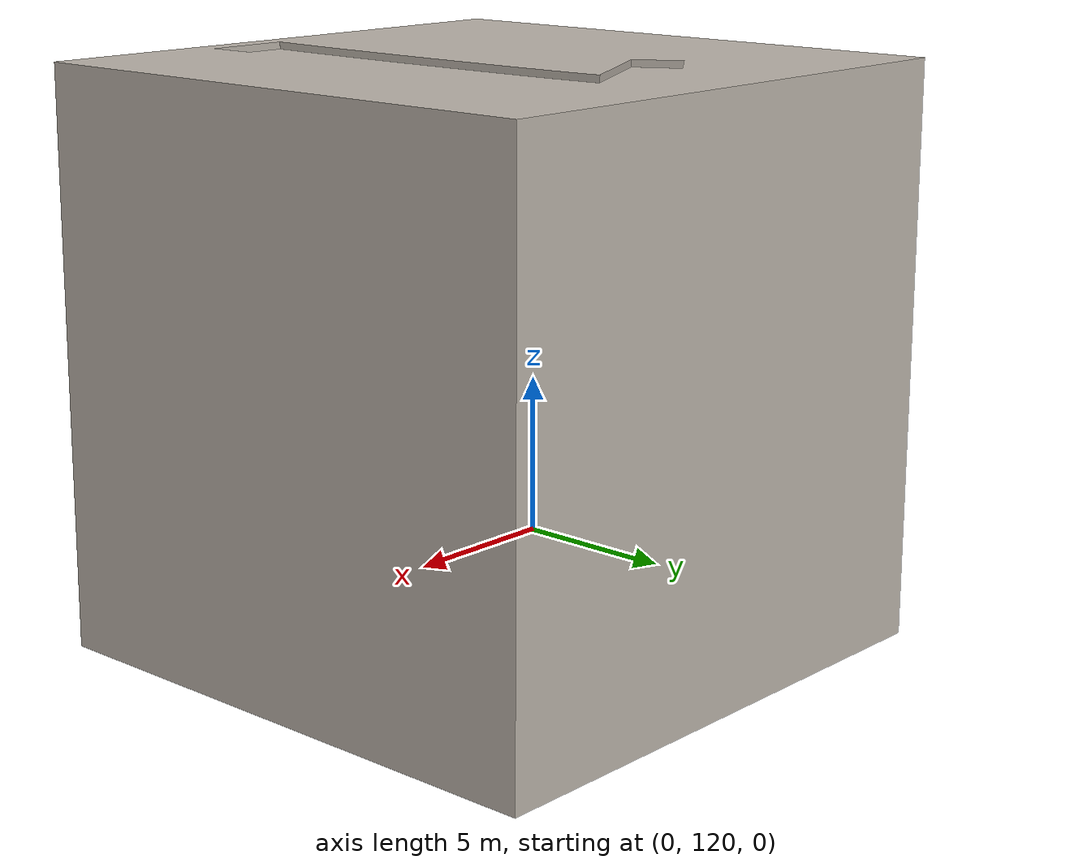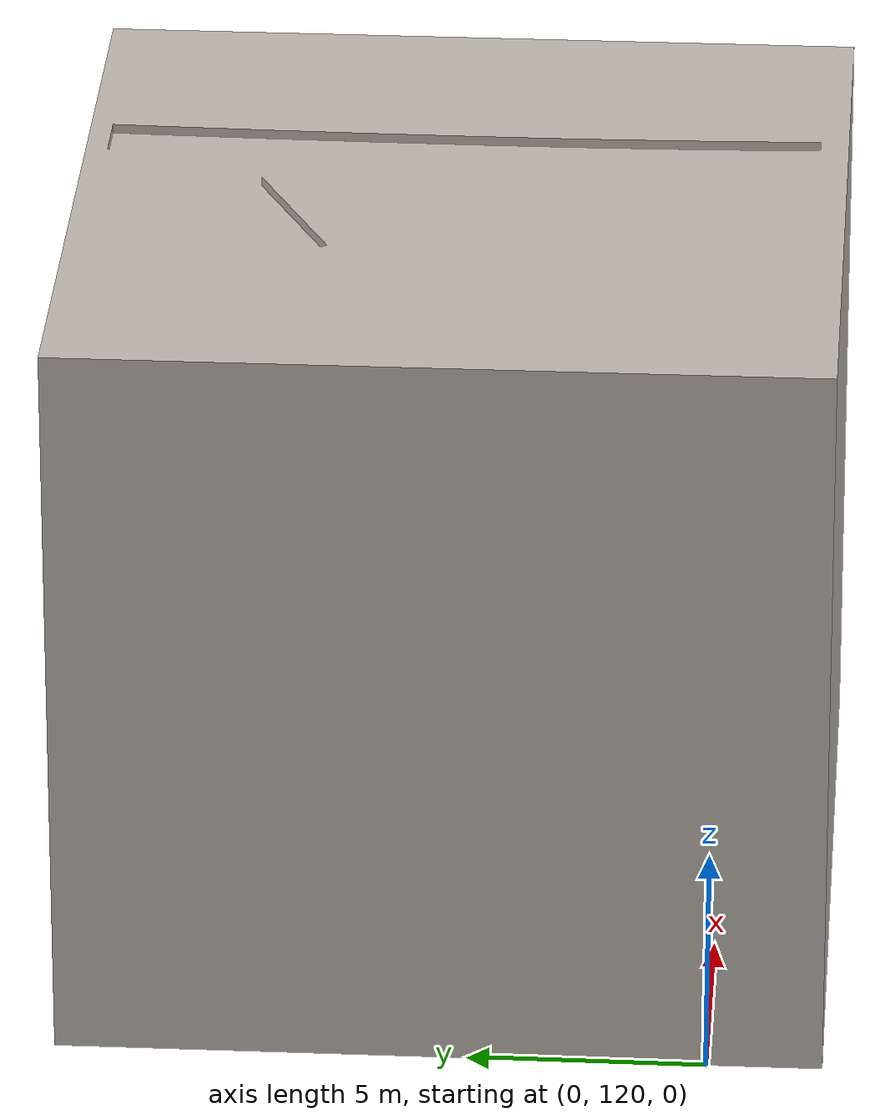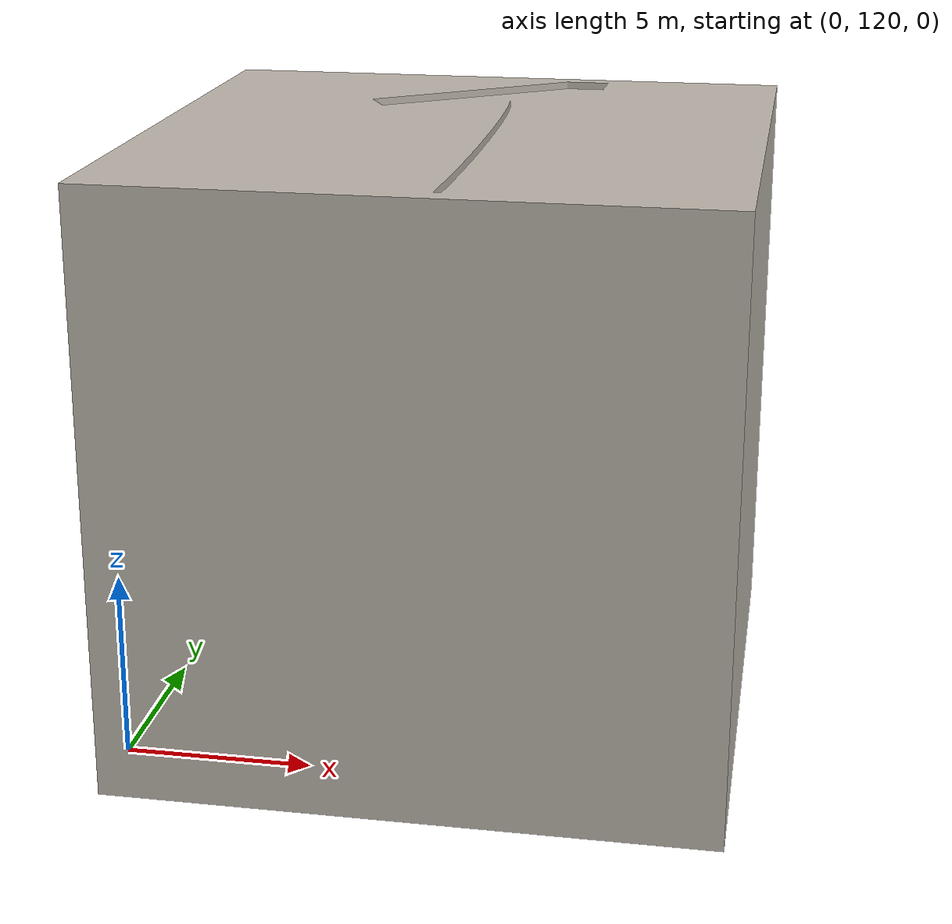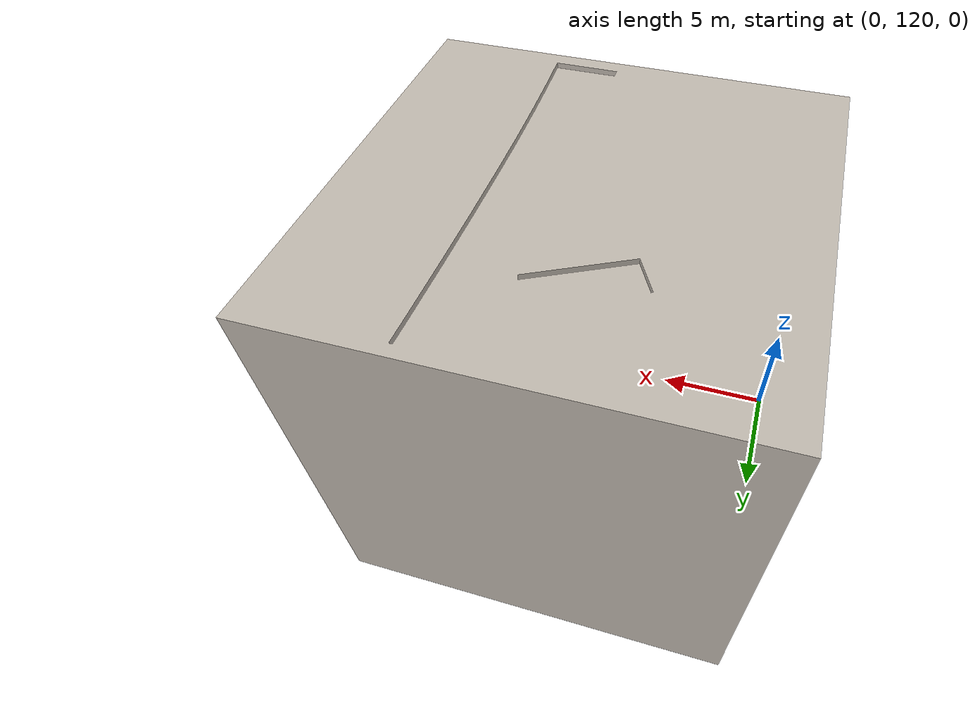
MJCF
<mujoco model="cube1">
  <asset>
    <mesh file="meshes/cube1.stl" name="cube1_mesh" scale="0.8 0.8 0.8"/>
    <texture type="2d" file="../textures/number1.png" rgb1="1 1 1" name="tex-number1"/>
    <material name="cube1" reflectance="0.5" texrepeat="1 1" texture="tex-number1" texuniform="false"/>
  </asset>
  <worldbody>
    <body>
      <body name="object">
        <geom pos="0 0 0" mesh="cube1_mesh" type="mesh" solimp="0.998 0.998 0.001" solref="0.001 1" density="150" friction="0.95 0.3 0.1" material="cube1" group="0" condim="4"/>
      </body>
      <site rgba="0 0 0 0" size="0.005" pos="0 0 -0.10" name="bottom_site"/>
      <site rgba="0 0 0 0" size="0.005" pos="0 0 0.03" name="top_site"/>
      <site rgba="0 0 0 0" size="0.005" pos="0.04 0.03 0" name="horizontal_radius_site"/>
    </body>
  </worldbody>
</mujoco>
